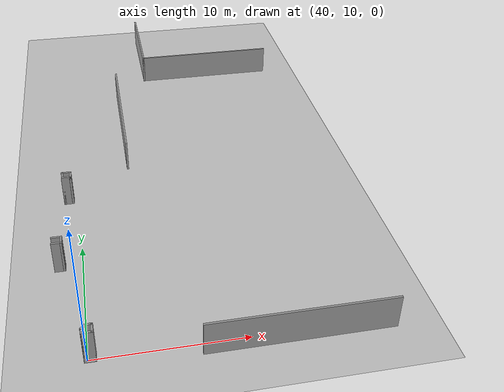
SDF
<sdf version="1.6">
 <world name="default">
  <model name="ground_plane">
   <static>1</static>
   <link name="link">
    <collision name="collision">
     <geometry><plane><normal>0 0 1</normal><size>300 300</size></plane></geometry>
     <surface>
      <contact><collide_bitmask>65535</collide_bitmask></contact>
      <friction><ode><mu>100</mu><mu2>50</mu2></ode></friction>
     </surface>
    </collision>
    <visual name="visual">
     <cast_shadows>0</cast_shadows>
     <geometry><plane><normal>0 0 1</normal><size>300 300</size></plane></geometry>
     <material>
      <script><uri>file://media/materials/scripts/gazebo.material</uri><name>Gazebo/Grey</name></script>
     </material>
    </visual>
   </link>
  </model>
  <model name="NIK">
   <pose>-0.005548 -3.7937 0 0 -0 0</pose>
   <link name="Wall_11">
    <collision name="Wall_11_Collision">
     <geometry><box><size>9 0.15 2.5</size></box></geometry>
     <pose>0 0 1.25 0 -0 0</pose>
    </collision>
    <visual name="Wall_11_Visual">
     <pose>0 0 1.25 0 -0 0</pose>
     <geometry><box><size>9 0.15 2.5</size></box></geometry>
     <material>
      <script><uri>file://media/materials/scripts/gazebo.material</uri><name>Gazebo/Grey</name></script>
      <ambient>1 1 1 1</ambient>
     </material>
     <meta><layer>0</layer></meta>
    </visual>
    <pose>46.8813 52.5462 0 0 -0 -1.5708</pose>
   </link>
   <link name="Wall_117">
    <collision name="Wall_117_Collision">
     <geometry><box><size>12.25 0.15 2.5</size></box></geometry>
     <pose>0 0 1.25 0 -0 0</pose>
    </collision>
    <visual name="Wall_117_Visual">
     <pose>0 0 1.25 0 -0 0</pose>
     <geometry><box><size>12.25 0.15 2.5</size></box></geometry>
     <material>
      <script><uri>file://media/materials/scripts/gazebo.material</uri><name>Gazebo/Grey</name></script>
      <ambient>1 1 1 1</ambient>
     </material>
     <meta><layer>0</layer></meta>
    </visual>
    <pose>52.9572 13.0789 0 0 -0 0</pose>
   </link>
   <link name="Wall_16">
    <collision name="Wall_16_Collision">
     <geometry><box><size>12.25 0.15 2.5</size></box></geometry>
     <pose>0 0 1.25 0 -0 0</pose>
    </collision>
    <visual name="Wall_16_Visual">
     <pose>0 0 1.25 0 -0 0</pose>
     <geometry><box><size>12.25 0.15 2.5</size></box></geometry>
     <material>
      <script><uri>file://media/materials/scripts/gazebo.material</uri><name>Gazebo/Grey</name></script>
      <ambient>1 1 1 1</ambient>
     </material>
     <meta><layer>0</layer></meta>
    </visual>
    <pose>52.9313 48.1212 0 0 -0 0</pose>
   </link>
   <link name="Wall_185">
    <collision name="Wall_185_Collision">
     <geometry><box><size>12.25 0.15 2.5</size></box></geometry>
     <pose>0 0 1.25 0 -0 0</pose>
    </collision>
    <visual name="Wall_185_Visual">
     <pose>0 0 1.25 0 -0 0</pose>
     <geometry><box><size>12.25 0.15 2.5</size></box></geometry>
     <material>
      <script><uri>file://media/materials/scripts/gazebo.material</uri><name>Gazebo/Grey</name></script>
      <ambient>1 1 1 1</ambient>
     </material>
     <meta><layer>0</layer></meta>
    </visual>
    <pose>43.9825 39.1289 0 0 -0 -1.5708</pose>
   </link>
   <link name="Wall_509">
    <collision name="Wall_509_Collision">
     <geometry><box><size>0.75 0.15 2.5</size></box></geometry>
     <pose>0 0 1.25 0 -0 0</pose>
    </collision>
    <visual name="Wall_509_Visual">
     <pose>0 0 1.25 0 -0 0</pose>
     <geometry><box><size>0.75 0.15 2.5</size></box></geometry>
     <material>
      <script><uri>file://media/materials/scripts/gazebo.material</uri><name>Gazebo/Grey</name></script>
      <ambient>1 1 1 1</ambient>
     </material>
     <meta><layer>0</layer></meta>
    </visual>
    <pose>38.8945 29.5142 0 0 -0 -1.5708</pose>
   </link>
   <link name="Wall_510">
    <collision name="Wall_510_Collision">
     <geometry><box><size>0.75 0.15 2.5</size></box></geometry>
     <pose>0 0 1.25 0 -0 0</pose>
    </collision>
    <visual name="Wall_510_Visual">
     <pose>0 0 1.25 0 -0 0</pose>
     <geometry><box><size>0.75 0.15 2.5</size></box></geometry>
     <material>
      <script><uri>file://media/materials/scripts/gazebo.material</uri><name>Gazebo/Grey</name></script>
      <ambient>1 1 1 1</ambient>
     </material>
     <meta><layer>0</layer></meta>
    </visual>
    <pose>39.1945 29.2142 0 0 -0 0</pose>
   </link>
   <link name="Wall_511">
    <collision name="Wall_511_Collision">
     <geometry><box><size>0.75 0.15 2.5</size></box></geometry>
     <pose>0 0 1.25 0 -0 0</pose>
    </collision>
    <visual name="Wall_511_Visual">
     <pose>0 0 1.25 0 -0 0</pose>
     <geometry><box><size>0.75 0.15 2.5</size></box></geometry>
     <material>
      <script><uri>file://media/materials/scripts/gazebo.material</uri><name>Gazebo/Grey</name></script>
      <ambient>1 1 1 1</ambient>
     </material>
     <meta><layer>0</layer></meta>
    </visual>
    <pose>39.4945 29.5142 0 0 -0 1.5708</pose>
   </link>
   <link name="Wall_512">
    <collision name="Wall_512_Collision">
     <geometry><box><size>0.75 0.15 2.5</size></box></geometry>
     <pose>0 0 1.25 0 -0 0</pose>
    </collision>
    <visual name="Wall_512_Visual">
     <pose>0 0 1.25 0 -0 0</pose>
     <geometry><box><size>0.75 0.15 2.5</size></box></geometry>
     <material>
      <script><uri>file://media/materials/scripts/gazebo.material</uri><name>Gazebo/Grey</name></script>
      <ambient>1 1 1 1</ambient>
     </material>
     <meta><layer>0</layer></meta>
    </visual>
    <pose>39.1945 29.8142 0 0 -0 3.14159</pose>
   </link>
   <link name="Wall_515">
    <collision name="Wall_515_Collision">
     <geometry><box><size>0.75 0.15 2.5</size></box></geometry>
     <pose>0 0 1.25 0 -0 0</pose>
    </collision>
    <visual name="Wall_515_Visual">
     <pose>0 0 1.25 0 -0 0</pose>
     <geometry><box><size>0.75 0.15 2.5</size></box></geometry>
     <material>
      <script><uri>file://media/materials/scripts/gazebo.material</uri><name>Gazebo/Grey</name></script>
      <ambient>1 1 1 1</ambient>
     </material>
     <meta><layer>0</layer></meta>
    </visual>
    <pose>38.4692 21.7914 0 0 -0 0</pose>
   </link>
   <link name="Wall_516">
    <collision name="Wall_516_Collision">
     <geometry><box><size>0.75 0.15 2.5</size></box></geometry>
     <pose>0 0 1.25 0 -0 0</pose>
    </collision>
    <visual name="Wall_516_Visual">
     <pose>0 0 1.25 0 -0 0</pose>
     <geometry><box><size>0.75 0.15 2.5</size></box></geometry>
     <material>
      <script><uri>file://media/materials/scripts/gazebo.material</uri><name>Gazebo/Grey</name></script>
      <ambient>1 1 1 1</ambient>
     </material>
     <meta><layer>0</layer></meta>
    </visual>
    <pose>38.7692 22.0914 0 0 -0 1.5708</pose>
   </link>
   <link name="Wall_517">
    <collision name="Wall_517_Collision">
     <geometry><box><size>0.75 0.15 2.5</size></box></geometry>
     <pose>0 0 1.25 0 -0 0</pose>
    </collision>
    <visual name="Wall_517_Visual">
     <pose>0 0 1.25 0 -0 0</pose>
     <geometry><box><size>0.75 0.15 2.5</size></box></geometry>
     <material>
      <script><uri>file://media/materials/scripts/gazebo.material</uri><name>Gazebo/Grey</name></script>
      <ambient>1 1 1 1</ambient>
     </material>
     <meta><layer>0</layer></meta>
    </visual>
    <pose>38.4692 22.3914 0 0 -0 3.14159</pose>
   </link>
   <link name="Wall_519">
    <collision name="Wall_519_Collision">
     <geometry><box><size>0.5 0.15 2.5</size></box></geometry>
     <pose>0 0 1.25 0 -0 0</pose>
    </collision>
    <visual name="Wall_519_Visual">
     <pose>0 0 1.25 0 -0 0</pose>
     <geometry><box><size>0.5 0.15 2.5</size></box></geometry>
     <material>
      <script><uri>file://media/materials/scripts/gazebo.material</uri><name>Gazebo/Grey</name></script>
      <ambient>1 1 1 1</ambient>
     </material>
     <meta><layer>0</layer></meta>
    </visual>
    <pose>39.8859 13.8748 0 0 -0 -1.5708</pose>
   </link>
   <link name="Wall_520">
    <collision name="Wall_520_Collision">
     <geometry><box><size>0.75 0.15 2.5</size></box></geometry>
     <pose>0 0 1.25 0 -0 0</pose>
    </collision>
    <visual name="Wall_520_Visual">
     <pose>0 0 1.25 0 -0 0</pose>
     <geometry><box><size>0.75 0.15 2.5</size></box></geometry>
     <material>
      <script><uri>file://media/materials/scripts/gazebo.material</uri><name>Gazebo/Grey</name></script>
      <ambient>1 1 1 1</ambient>
     </material>
     <meta><layer>0</layer></meta>
    </visual>
    <pose>40.1859 13.6998 0 0 -0 0</pose>
   </link>
   <link name="Wall_521">
    <collision name="Wall_521_Collision">
     <geometry><box><size>0.75 0.15 2.5</size></box></geometry>
     <pose>0 0 1.25 0 -0 0</pose>
    </collision>
    <visual name="Wall_521_Visual">
     <pose>0 0 1.25 0 -0 0</pose>
     <geometry><box><size>0.75 0.15 2.5</size></box></geometry>
     <material>
      <script><uri>file://media/materials/scripts/gazebo.material</uri><name>Gazebo/Grey</name></script>
      <ambient>1 1 1 1</ambient>
     </material>
     <meta><layer>0</layer></meta>
    </visual>
    <pose>40.4859 13.9998 0 0 -0 1.5708</pose>
   </link>
   <link name="Wall_522">
    <collision name="Wall_522_Collision">
     <geometry><box><size>0.5 0.15 2.5</size></box></geometry>
     <pose>0 0 1.25 0 -0 0</pose>
    </collision>
    <visual name="Wall_522_Visual">
     <pose>0 0 1.25 0 -0 0</pose>
     <geometry><box><size>0.5 0.15 2.5</size></box></geometry>
     <material>
      <script><uri>file://media/materials/scripts/gazebo.material</uri><name>Gazebo/Grey</name></script>
      <ambient>1 1 1 1</ambient>
     </material>
     <meta><layer>0</layer></meta>
    </visual>
    <pose>40.3109 14.2998 0 0 -0 3.14159</pose>
   </link>
   <link name="Wall_523">
    <collision name="Wall_523_Collision">
     <geometry><box><size>0.503553 0.15 2.5</size></box></geometry>
     <pose>0 0 1.25 0 -0 0</pose>
    </collision>
    <visual name="Wall_523_Visual">
     <pose>0 0 1.25 0 -0 0</pose>
     <geometry><box><size>0.503553 0.15 2.5</size></box></geometry>
     <material>
      <script><uri>file://media/materials/scripts/gazebo.material</uri><name>Gazebo/Grey</name></script>
      <ambient>1 1 1 1</ambient>
     </material>
     <meta><layer>0</layer></meta>
    </visual>
    <pose>40.0109 14.1748 0 0 -0 -2.35619</pose>
   </link>
   <static>1</static>
  </model>
 </world>
</sdf>
